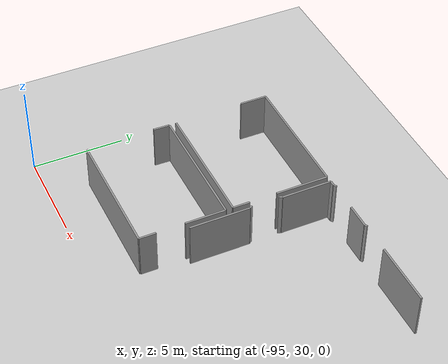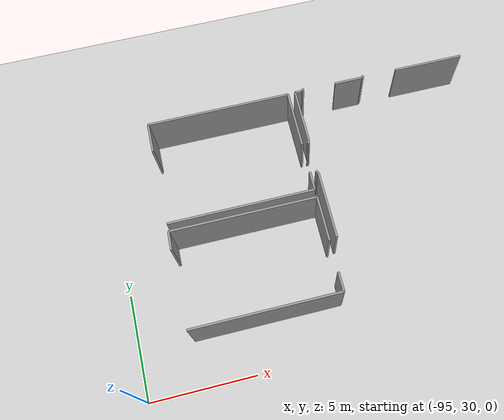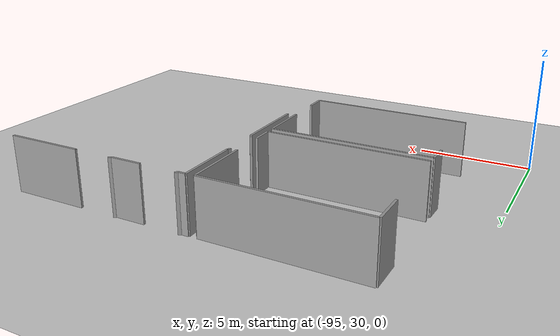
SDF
<sdf version="1.6">
 <world name="default">
  <model name="ground_plane">
   <static>1</static>
   <link name="link">
    <collision name="collision">
     <geometry><plane><normal>0 0 1</normal><size>100 100</size></plane></geometry>
     <surface><friction><ode><mu>100</mu><mu2>50</mu2></ode></friction></surface>
    </collision>
    <visual name="visual">
     <cast_shadows>0</cast_shadows>
     <geometry><plane><normal>0 0 1</normal><size>100 100</size></plane></geometry>
     <material>
      <script><uri>file://media/materials/scripts/gazebo.material</uri><name>Gazebo/Grey</name></script>
     </material>
    </visual>
   </link>
  </model>
  <model name="0510035739_A_40_1_102">
   <static>1</static>
   <link name="Wall_8">
    <collision name="Wall_8_Collision">
     <geometry><box><size>6.92356971011 0.1 2.5</size></box></geometry>
     <pose>3.46178485506 0 1.25 0 0 0</pose>
    </collision>
    <visual name="Wall_8_Visual">
     <pose>3.46178485506 0 1.25 0 0 0</pose>
     <geometry><box><size>6.92356971011 0.1 2.5</size></box></geometry>
     <material>
      <script><uri>file://media/materials/scripts/gazebo.material</uri><name>Gazebo/Grey</name></script>
      <ambient>1 1 1 1</ambient>
     </material>
    </visual>
    <pose>0.0662274428693 -7.37391632163 0 0 0 0.0</pose>
   </link>
   <link name="Wall_9">
    <collision name="Wall_9_Collision">
     <geometry><box><size>2.82587404305 0.1 2.5</size></box></geometry>
     <pose>1.41293702152 0 1.25 0 0 0</pose>
    </collision>
    <visual name="Wall_9_Visual">
     <pose>1.41293702152 0 1.25 0 0 0</pose>
     <geometry><box><size>2.82587404305 0.1 2.5</size></box></geometry>
     <material>
      <script><uri>file://media/materials/scripts/gazebo.material</uri><name>Gazebo/Grey</name></script>
      <ambient>1 1 1 1</ambient>
     </material>
    </visual>
    <pose>6.98979715298 -7.37391632163 0 0 0 -1.57079632679</pose>
   </link>
   <link name="Wall_10">
    <collision name="Wall_10_Collision">
     <geometry><box><size>0.919542572147 0.1 2.5</size></box></geometry>
     <pose>0.459771286073 0 1.25 0 0 0</pose>
    </collision>
    <visual name="Wall_10_Visual">
     <pose>0.459771286073 0 1.25 0 0 0</pose>
     <geometry><box><size>0.919542572147 0.1 2.5</size></box></geometry>
     <material>
      <script><uri>file://media/materials/scripts/gazebo.material</uri><name>Gazebo/Grey</name></script>
      <ambient>1 1 1 1</ambient>
     </material>
    </visual>
    <pose>6.98979715298 -11.6766623407 0 0 0 -1.57079632679</pose>
   </link>
   <link name="Wall_11">
    <collision name="Wall_11_Collision">
     <geometry><box><size>6.93350382655 0.1 2.5</size></box></geometry>
     <pose>3.46675191327 0 1.25 0 0 0</pose>
    </collision>
    <visual name="Wall_11_Visual">
     <pose>3.46675191327 0 1.25 0 0 0</pose>
     <geometry><box><size>6.93350382655 0.1 2.5</size></box></geometry>
     <material>
      <script><uri>file://media/materials/scripts/gazebo.material</uri><name>Gazebo/Grey</name></script>
      <ambient>1 1 1 1</ambient>
     </material>
    </visual>
    <pose>6.98979715298 -12.5962049128 0 0 0 3.14159265359</pose>
   </link>
   <link name="Wall_12">
    <collision name="Wall_12_Collision">
     <geometry><box><size>1.46034890439 0.1 2.5</size></box></geometry>
     <pose>0.730174452194 0 1.25 0 0 0</pose>
    </collision>
    <visual name="Wall_12_Visual">
     <pose>0.730174452194 0 1.25 0 0 0</pose>
     <geometry><box><size>1.46034890439 0.1 2.5</size></box></geometry>
     <material>
      <script><uri>file://media/materials/scripts/gazebo.material</uri><name>Gazebo/Grey</name></script>
      <ambient>1 1 1 1</ambient>
     </material>
    </visual>
    <pose>0.0562933264389 -8.83423143689 0 0 0 1.56399371064</pose>
   </link>
   <link name="Wall_13">
    <collision name="Wall_13_Collision">
     <geometry><box><size>6.93706991962 0.1 2.5</size></box></geometry>
     <pose>3.46853495981 0 1.25 0 0 0</pose>
    </collision>
    <visual name="Wall_13_Visual">
     <pose>3.46853495981 0 1.25 0 0 0</pose>
     <geometry><box><size>6.93706991962 0.1 2.5</size></box></geometry>
     <material>
      <script><uri>file://media/materials/scripts/gazebo.material</uri><name>Gazebo/Grey</name></script>
      <ambient>1 1 1 1</ambient>
     </material>
    </visual>
    <pose>0.0621519079235 -12.982107128 0 0 0 0.0</pose>
   </link>
   <link name="Wall_14">
    <collision name="Wall_14_Collision">
     <geometry><box><size>2.17709982386 0.1 2.5</size></box></geometry>
     <pose>1.08854991193 0 1.25 0 0 0</pose>
    </collision>
    <visual name="Wall_14_Visual">
     <pose>1.08854991193 0 1.25 0 0 0</pose>
     <geometry><box><size>2.17709982386 0.1 2.5</size></box></geometry>
     <material>
      <script><uri>file://media/materials/scripts/gazebo.material</uri><name>Gazebo/Grey</name></script>
      <ambient>1 1 1 1</ambient>
     </material>
    </visual>
    <pose>6.99922182755 -12.982107128 0 0 0 -1.57079632679</pose>
   </link>
   <link name="Wall_15">
    <collision name="Wall_15_Collision">
     <geometry><box><size>0.906806525441 0.1 2.5</size></box></geometry>
     <pose>0.45340326272 0 1.25 0 0 0</pose>
    </collision>
    <visual name="Wall_15_Visual">
     <pose>0.45340326272 0 1.25 0 0 0</pose>
     <geometry><box><size>0.906806525441 0.1 2.5</size></box></geometry>
     <material>
      <script><uri>file://media/materials/scripts/gazebo.material</uri><name>Gazebo/Grey</name></script>
      <ambient>1 1 1 1</ambient>
     </material>
    </visual>
    <pose>6.99922182755 -16.6750512307 0 0 0 -1.57079632679</pose>
   </link>
   <link name="Wall_16">
    <collision name="Wall_16_Collision">
     <geometry><box><size>6.9615231293 0.1 2.5</size></box></geometry>
     <pose>3.48076156465 0 1.25 0 0 0</pose>
    </collision>
    <visual name="Wall_16_Visual">
     <pose>3.48076156465 0 1.25 0 0 0</pose>
     <geometry><box><size>6.9615231293 0.1 2.5</size></box></geometry>
     <material>
      <script><uri>file://media/materials/scripts/gazebo.material</uri><name>Gazebo/Grey</name></script>
      <ambient>1 1 1 1</ambient>
     </material>
    </visual>
    <pose>6.99922182755 -17.5818577562 0 0 0 3.14159265359</pose>
   </link>
   <link name="Wall_18">
    <collision name="Wall_18_Collision">
     <geometry><box><size>0.896187200427 0.1 2.5</size></box></geometry>
     <pose>0.448093600214 0 1.25 0 0 0</pose>
    </collision>
    <visual name="Wall_18_Visual">
     <pose>0.448093600214 0 1.25 0 0 0</pose>
     <geometry><box><size>0.896187200427 0.1 2.5</size></box></geometry>
     <material>
      <script><uri>file://media/materials/scripts/gazebo.material</uri><name>Gazebo/Grey</name></script>
      <ambient>1 1 1 1</ambient>
     </material>
    </visual>
    <pose>0.0376986982487 -13.8779606533 0 0 0 1.54350711202</pose>
   </link>
   <link name="Wall_94">
    <collision name="Wall_94_Collision">
     <geometry><box><size>2.70462687841 0.1 2.5</size></box></geometry>
     <pose>1.3523134392 0 1.25 0 0 0</pose>
    </collision>
    <visual name="Wall_94_Visual">
     <pose>1.3523134392 0 1.25 0 0 0</pose>
     <geometry><box><size>2.70462687841 0.1 2.5</size></box></geometry>
     <material>
      <script><uri>file://media/materials/scripts/gazebo.material</uri><name>Gazebo/Grey</name></script>
      <ambient>1 1 1 1</ambient>
     </material>
    </visual>
    <pose>7.35379336783 -10.0584202462 0 0 0 1.57079632679</pose>
   </link>
   <link name="Wall_95">
    <collision name="Wall_95_Collision">
     <geometry><box><size>0.31152370242 0.1 2.5</size></box></geometry>
     <pose>0.15576185121 0 1.25 0 0 0</pose>
    </collision>
    <visual name="Wall_95_Visual">
     <pose>0.15576185121 0 1.25 0 0 0</pose>
     <geometry><box><size>0.31152370242 0.1 2.5</size></box></geometry>
     <material>
      <script><uri>file://media/materials/scripts/gazebo.material</uri><name>Gazebo/Grey</name></script>
      <ambient>1 1 1 1</ambient>
     </material>
    </visual>
    <pose>7.35379336783 -7.35379336783 0 0 0 0.0</pose>
   </link>
   <link name="Wall_96">
    <collision name="Wall_96_Collision">
     <geometry><box><size>0.154825493918 0.1 2.5</size></box></geometry>
     <pose>0.077412746959 0 1.25 0 0 0</pose>
    </collision>
    <visual name="Wall_96_Visual">
     <pose>0.077412746959 0 1.25 0 0 0</pose>
     <geometry><box><size>0.154825493918 0.1 2.5</size></box></geometry>
     <material>
      <script><uri>file://media/materials/scripts/gazebo.material</uri><name>Gazebo/Grey</name></script>
      <ambient>1 1 1 1</ambient>
     </material>
    </visual>
    <pose>7.66531707025 -7.35379336783 0 0 0 0.652385376521</pose>
   </link>
   <link name="Wall_99">
    <collision name="Wall_99_Collision">
     <geometry><box><size>1.35205871827 0.1 2.5</size></box></geometry>
     <pose>0.676029359135 0 1.25 0 0 0</pose>
    </collision>
    <visual name="Wall_99_Visual">
     <pose>0.676029359135 0 1.25 0 0 0</pose>
     <geometry><box><size>1.35205871827 0.1 2.5</size></box></geometry>
     <material>
      <script><uri>file://media/materials/scripts/gazebo.material</uri><name>Gazebo/Grey</name></script>
      <ambient>1 1 1 1</ambient>
     </material>
    </visual>
    <pose>9.38646642205 -7.3318873675 0 0 0 0.0</pose>
   </link>
   <link name="Wall_100">
    <collision name="Wall_100_Collision">
     <geometry><box><size>0.141461879979 0.1 2.5</size></box></geometry>
     <pose>0.0707309399897 0 1.25 0 0 0</pose>
    </collision>
    <visual name="Wall_100_Visual">
     <pose>0.0707309399897 0 1.25 0 0 0</pose>
     <geometry><box><size>0.141461879979 0.1 2.5</size></box></geometry>
     <material>
      <script><uri>file://media/materials/scripts/gazebo.material</uri><name>Gazebo/Grey</name></script>
      <ambient>1 1 1 1</ambient>
     </material>
    </visual>
    <pose>10.7385251403 -7.3318873675 0 0 0 0.568524547731</pose>
   </link>
   <link name="Wall_102">
    <collision name="Wall_102_Collision">
     <geometry><box><size>3.40026974947 0.1 2.5</size></box></geometry>
     <pose>1.70013487473 0 1.25 0 0 0</pose>
    </collision>
    <visual name="Wall_102_Visual">
     <pose>1.70013487473 0 1.25 0 0 0</pose>
     <geometry><box><size>3.40026974947 0.1 2.5</size></box></geometry>
     <material>
      <script><uri>file://media/materials/scripts/gazebo.material</uri><name>Gazebo/Grey</name></script>
      <ambient>1 1 1 1</ambient>
     </material>
    </visual>
    <pose>12.4996656788 -7.30641527409 0 0 0 0.0</pose>
   </link>
   <link name="Wall_144">
    <collision name="Wall_144_Collision">
     <geometry><box><size>3.23189921202 0.1 2.5</size></box></geometry>
     <pose>1.61594960601 0 1.25 0 0 0</pose>
    </collision>
    <visual name="Wall_144_Visual">
     <pose>1.61594960601 0 1.25 0 0 0</pose>
     <geometry><box><size>3.23189921202 0.1 2.5</size></box></geometry>
     <material>
      <script><uri>file://media/materials/scripts/gazebo.material</uri><name>Gazebo/Grey</name></script>
      <ambient>1 1 1 1</ambient>
     </material>
    </visual>
    <pose>7.36321804239 -15.0830453925 0 0 0 1.57079632679</pose>
   </link>
   <link name="Wall_145">
    <collision name="Wall_145_Collision">
     <geometry><box><size>0.178771637217 0.1 2.5</size></box></geometry>
     <pose>0.0893858186086 0 1.25 0 0 0</pose>
    </collision>
    <visual name="Wall_145_Visual">
     <pose>0.0893858186086 0 1.25 0 0 0</pose>
     <geometry><box><size>0.178771637217 0.1 2.5</size></box></geometry>
     <material>
      <script><uri>file://media/materials/scripts/gazebo.material</uri><name>Gazebo/Grey</name></script>
      <ambient>1 1 1 1</ambient>
     </material>
    </visual>
    <pose>7.36321804239 -11.8511461805 0 0 0 2.12441154204</pose>
   </link>
   <link name="Wall_146">
    <collision name="Wall_146_Collision">
     <geometry><box><size>0.17712631486 0.1 2.5</size></box></geometry>
     <pose>0.0885631574302 0 1.25 0 0 0</pose>
    </collision>
    <visual name="Wall_146_Visual">
     <pose>0.0885631574302 0 1.25 0 0 0</pose>
     <geometry><box><size>0.17712631486 0.1 2.5</size></box></geometry>
     <material>
      <script><uri>file://media/materials/scripts/gazebo.material</uri><name>Gazebo/Grey</name></script>
      <ambient>1 1 1 1</ambient>
     </material>
    </visual>
    <pose>7.26922601771 -10.214054737 0 0 0 1.07305639818</pose>
   </link>
   <pose>-92.5 49.8157534709 0 0 0 0</pose>
  </model>
 </world>
</sdf>
